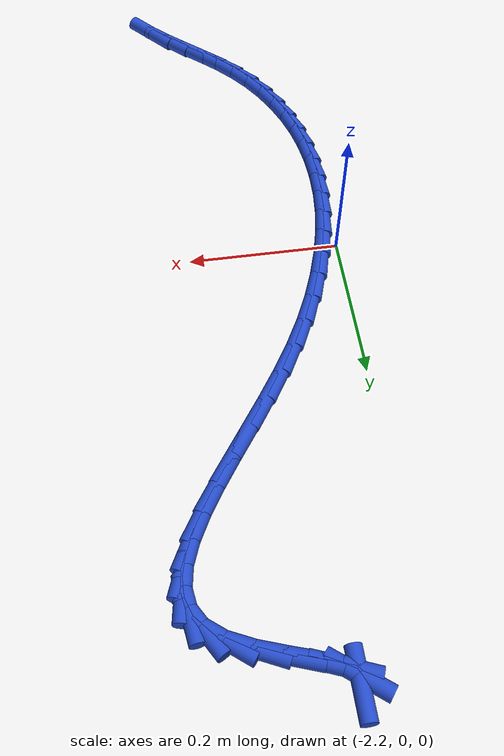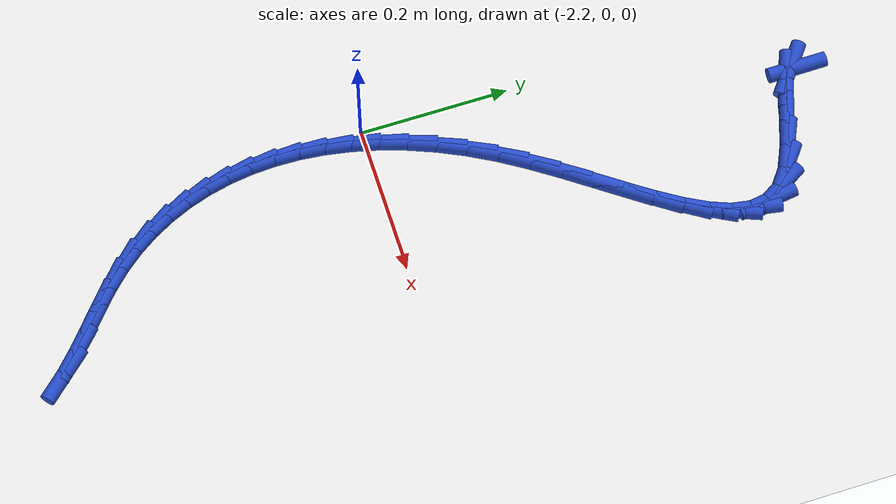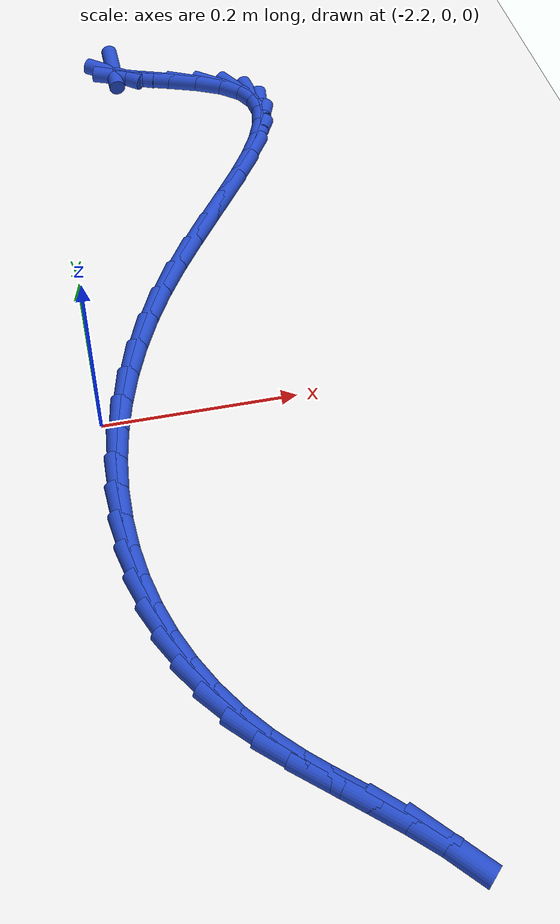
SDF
<sdf version="1.6">
 <world name="default">
  <model name="ground_plane">
   <static>1</static>
   <link name="link">
    <collision name="collision">
     <geometry><plane><normal>0 0 1</normal><size>100 100</size></plane></geometry>
     <surface><friction><ode><mu>100</mu><mu2>50</mu2></ode></friction></surface>
    </collision>
    <visual name="visual">
     <cast_shadows>0</cast_shadows>
     <geometry><plane><normal>0 0 1</normal><size>100 100</size></plane></geometry>
     <material>
      <script><uri>file://media/materials/scripts/gazebo.material</uri><name>Gazebo/WhiteGlow</name></script>
     </material>
    </visual>
   </link>
  </model>
  <model name="line">
   <link name="link_104">
    <pose>-2.112296795056608 0.5718959466598861 0.01 0 1.57 -1.5630909837554887</pose>
    <collision name="collision">
     <geometry><cylinder><radius>0.01</radius><length>0.08</length></cylinder></geometry>
    </collision>
    <visual name="visual">
     <material>
      <script><name>Gazebo/Blue</name><uri>file://media/materials/scripts/gazebo.material</uri></script>
     </material>
     <geometry><cylinder><radius>0.01</radius><length>0.08</length></cylinder></geometry>
    </visual>
   </link>
   <link name="link_105">
    <pose>-2.1122215041426853 0.5621248795618471 0.01 0 1.57 -0.6560799740158152</pose>
    <collision name="collision">
     <geometry><cylinder><radius>0.01</radius><length>0.08</length></cylinder></geometry>
    </collision>
    <visual name="visual">
     <material>
      <script><name>Gazebo/Blue</name><uri>file://media/materials/scripts/gazebo.material</uri></script>
     </material>
     <geometry><cylinder><radius>0.01</radius><length>0.08</length></cylinder></geometry>
    </visual>
   </link>
   <link name="link_106">
    <pose>-2.1000133566324757 0.5527265260437201 0.01 0 1.57 -0.36834872525323975</pose>
    <collision name="collision">
     <geometry><cylinder><radius>0.01</radius><length>0.08</length></cylinder></geometry>
    </collision>
    <visual name="visual">
     <material>
      <script><name>Gazebo/Blue</name><uri>file://media/materials/scripts/gazebo.material</uri></script>
     </material>
     <geometry><cylinder><radius>0.01</radius><length>0.08</length></cylinder></geometry>
    </visual>
   </link>
   <link name="link_107">
    <pose>-2.0756708130063855 0.5433311638146319 0.01 0 1.57 -0.3075145729033854</pose>
    <collision name="collision">
     <geometry><cylinder><radius>0.01</radius><length>0.08</length></cylinder></geometry>
    </collision>
    <visual name="visual">
     <material>
      <script><name>Gazebo/Blue</name><uri>file://media/materials/scripts/gazebo.material</uri></script>
     </material>
     <geometry><cylinder><radius>0.01</radius><length>0.08</length></cylinder></geometry>
    </visual>
   </link>
   <link name="link_108">
    <pose>-2.043821621958553 0.533216203961517 0.01 0 1.57 -0.3304514534424468</pose>
    <collision name="collision">
     <geometry><cylinder><radius>0.01</radius><length>0.08</length></cylinder></geometry>
    </collision>
    <visual name="visual">
     <material>
      <script><name>Gazebo/Blue</name><uri>file://media/materials/scripts/gazebo.material</uri></script>
     </material>
     <geometry><cylinder><radius>0.01</radius><length>0.08</length></cylinder></geometry>
    </visual>
   </link>
   <link name="link_109">
    <pose>-2.0099417245532933 0.5215944042676455 0.01 0 1.57 -0.42885665210181056</pose>
    <collision name="collision">
     <geometry><cylinder><radius>0.01</radius><length>0.08</length></cylinder></geometry>
    </collision>
    <visual name="visual">
     <material>
      <script><name>Gazebo/Blue</name><uri>file://media/materials/scripts/gazebo.material</uri></script>
     </material>
     <geometry><cylinder><radius>0.01</radius><length>0.08</length></cylinder></geometry>
    </visual>
   </link>
   <link name="link_110">
    <pose>-1.97950706185492 0.507678522516287 0.01 0 1.57 -0.6596947282418382</pose>
    <collision name="collision">
     <geometry><cylinder><radius>0.01</radius><length>0.08</length></cylinder></geometry>
    </collision>
    <visual name="visual">
     <material>
      <script><name>Gazebo/Blue</name><uri>file://media/materials/scripts/gazebo.material</uri></script>
     </material>
     <geometry><cylinder><radius>0.01</radius><length>0.08</length></cylinder></geometry>
    </visual>
   </link>
   <link name="link_111">
    <pose>-1.957661583599907 0.4907348226777319 0.01 0 1.57 -1.034462628271105</pose>
    <collision name="collision">
     <geometry><cylinder><radius>0.01</radius><length>0.08</length></cylinder></geometry>
    </collision>
    <visual name="visual">
     <material>
      <script><name>Gazebo/Blue</name><uri>file://media/materials/scripts/gazebo.material</uri></script>
     </material>
     <geometry><cylinder><radius>0.01</radius><length>0.08</length></cylinder></geometry>
    </visual>
   </link>
   <link name="link_112">
    <pose>-1.9457200652068602 0.47064670688222593 0.01 0 1.57 -1.433175584633761</pose>
    <collision name="collision">
     <geometry><cylinder><radius>0.01</radius><length>0.08</length></cylinder></geometry>
    </collision>
    <visual name="visual">
     <material>
      <script><name>Gazebo/Blue</name><uri>file://media/materials/scripts/gazebo.material</uri></script>
     </material>
     <geometry><cylinder><radius>0.01</radius><length>0.08</length></cylinder></geometry>
    </visual>
   </link>
   <link name="link_113">
    <pose>-1.9425411236651127 0.44769342998641887 0.01 0 1.57 1.4000700396749268</pose>
    <collision name="collision">
     <geometry><cylinder><radius>0.01</radius><length>0.08</length></cylinder></geometry>
    </collision>
    <visual name="visual">
     <material>
      <script><name>Gazebo/Blue</name><uri>file://media/materials/scripts/gazebo.material</uri></script>
     </material>
     <geometry><cylinder><radius>0.01</radius><length>0.08</length></cylinder></geometry>
    </visual>
   </link>
   <link name="link_114">
    <pose>-1.946943076650314 0.4221607417835254 0.01 0 1.57 1.2005355421511115</pose>
    <collision name="collision">
     <geometry><cylinder><radius>0.01</radius><length>0.08</length></cylinder></geometry>
    </collision>
    <visual name="visual">
     <material>
      <script><name>Gazebo/Blue</name><uri>file://media/materials/scripts/gazebo.material</uri></script>
     </material>
     <geometry><cylinder><radius>0.01</radius><length>0.08</length></cylinder></geometry>
    </visual>
   </link>
   <link name="link_115">
    <pose>-1.957744241838115 0.3943343920667597 0.01 0 1.57 1.0780486023793205</pose>
    <collision name="collision">
     <geometry><cylinder><radius>0.01</radius><length>0.08</length></cylinder></geometry>
    </collision>
    <visual name="visual">
     <material>
      <script><name>Gazebo/Blue</name><uri>file://media/materials/scripts/gazebo.material</uri></script>
     </material>
     <geometry><cylinder><radius>0.01</radius><length>0.08</length></cylinder></geometry>
    </visual>
   </link>
   <link name="link_116">
    <pose>-1.9737629369041678 0.36450013062933745 0.01 0 1.57 1.0046722235540284</pose>
    <collision name="collision">
     <geometry><cylinder><radius>0.01</radius><length>0.08</length></cylinder></geometry>
    </collision>
    <visual name="visual">
     <material>
      <script><name>Gazebo/Blue</name><uri>file://media/materials/scripts/gazebo.material</uri></script>
     </material>
     <geometry><cylinder><radius>0.01</radius><length>0.08</length></cylinder></geometry>
    </visual>
   </link>
   <link name="link_117">
    <pose>-1.9938174795241215 0.33294370726447303 0.01 0 1.57 0.9638696723191071</pose>
    <collision name="collision">
     <geometry><cylinder><radius>0.01</radius><length>0.08</length></cylinder></geometry>
    </collision>
    <visual name="visual">
     <material>
      <script><name>Gazebo/Blue</name><uri>file://media/materials/scripts/gazebo.material</uri></script>
     </material>
     <geometry><cylinder><radius>0.01</radius><length>0.08</length></cylinder></geometry>
    </visual>
   </link>
   <link name="link_118">
    <pose>-2.0167261873736284 0.2999508717653811 0.01 0 1.57 0.9468143156761356</pose>
    <collision name="collision">
     <geometry><cylinder><radius>0.01</radius><length>0.08</length></cylinder></geometry>
    </collision>
    <visual name="visual">
     <material>
      <script><name>Gazebo/Blue</name><uri>file://media/materials/scripts/gazebo.material</uri></script>
     </material>
     <geometry><cylinder><radius>0.01</radius><length>0.08</length></cylinder></geometry>
    </visual>
   </link>
   <link name="link_119">
    <pose>-2.04130737812834 0.2658073739252761 0.01 0 1.57 0.9492999086007174</pose>
    <collision name="collision">
     <geometry><cylinder><radius>0.01</radius><length>0.08</length></cylinder></geometry>
    </collision>
    <visual name="visual">
     <material>
      <script><name>Gazebo/Blue</name><uri>file://media/materials/scripts/gazebo.material</uri></script>
     </material>
     <geometry><cylinder><radius>0.01</radius><length>0.08</length></cylinder></geometry>
    </visual>
   </link>
   <link name="link_120">
    <pose>-2.066379369463906 0.23079896353737364 0.01 0 1.57 0.9701393062138483</pose>
    <collision name="collision">
     <geometry><cylinder><radius>0.01</radius><length>0.08</length></cylinder></geometry>
    </collision>
    <visual name="visual">
     <material>
      <script><name>Gazebo/Blue</name><uri>file://media/materials/scripts/gazebo.material</uri></script>
     </material>
     <geometry><cylinder><radius>0.01</radius><length>0.08</length></cylinder></geometry>
    </visual>
   </link>
   <link name="link_121">
    <pose>-2.090760479055977 0.19521139039488805 0.01 0 1.57 1.0105134233489974</pose>
    <collision name="collision">
     <geometry><cylinder><radius>0.01</radius><length>0.08</length></cylinder></geometry>
    </collision>
    <visual name="visual">
     <material>
      <script><name>Gazebo/Blue</name><uri>file://media/materials/scripts/gazebo.material</uri></script>
     </material>
     <geometry><cylinder><radius>0.01</radius><length>0.08</length></cylinder></geometry>
    </visual>
   </link>
   <link name="link_122">
    <pose>-2.1132703101501593 0.15933021265344938 0.01 0 1.57 1.0674731562539341</pose>
    <collision name="collision">
     <geometry><cylinder><radius>0.01</radius><length>0.08</length></cylinder></geometry>
    </collision>
    <visual name="visual">
     <material>
      <script><name>Gazebo/Blue</name><uri>file://media/materials/scripts/gazebo.material</uri></script>
     </material>
     <geometry><cylinder><radius>0.01</radius><length>0.08</length></cylinder></geometry>
    </visual>
   </link>
   <link name="link_123">
    <pose>-2.1330589519581706 0.12339172352422847 0.01 0 1.57 1.12858899087336</pose>
    <collision name="collision">
     <geometry><cylinder><radius>0.01</radius><length>0.08</length></cylinder></geometry>
    </collision>
    <visual name="visual">
     <material>
      <script><name>Gazebo/Blue</name><uri>file://media/materials/scripts/gazebo.material</uri></script>
     </material>
     <geometry><cylinder><radius>0.01</radius><length>0.08</length></cylinder></geometry>
    </visual>
   </link>
   <link name="link_124">
    <pose>-2.150044571206613 0.08751772029424107 0.01 0 1.57 1.192028520779504</pose>
    <collision name="collision">
     <geometry><cylinder><radius>0.01</radius><length>0.08</length></cylinder></geometry>
    </collision>
    <visual name="visual">
     <material>
      <script><name>Gazebo/Blue</name><uri>file://media/materials/scripts/gazebo.material</uri></script>
     </material>
     <geometry><cylinder><radius>0.01</radius><length>0.08</length></cylinder></geometry>
    </visual>
   </link>
   <link name="link_125">
    <pose>-2.1642541945447076 0.05181377269898152 0.01 0 1.57 1.2579321534321684</pose>
    <collision name="collision">
     <geometry><cylinder><radius>0.01</radius><length>0.08</length></cylinder></geometry>
    </collision>
    <visual name="visual">
     <material>
      <script><name>Gazebo/Blue</name><uri>file://media/materials/scripts/gazebo.material</uri></script>
     </material>
     <geometry><cylinder><radius>0.01</radius><length>0.08</length></cylinder></geometry>
    </visual>
   </link>
   <link name="link_126">
    <pose>-2.1757148486216766 0.016385450473947332 0.01 0 1.57 1.3264373035651136</pose>
    <collision name="collision">
     <geometry><cylinder><radius>0.01</radius><length>0.08</length></cylinder></geometry>
    </collision>
    <visual name="visual">
     <material>
      <script><name>Gazebo/Blue</name><uri>file://media/materials/scripts/gazebo.material</uri></script>
     </material>
     <geometry><cylinder><radius>0.01</radius><length>0.08</length></cylinder></geometry>
    </visual>
   </link>
   <link name="link_127">
    <pose>-2.184453560086743 -0.018661676645367088 0.01 0 1.57 1.397670484394609</pose>
    <collision name="collision">
     <geometry><cylinder><radius>0.01</radius><length>0.08</length></cylinder></geometry>
    </collision>
    <visual name="visual">
     <material>
      <script><name>Gazebo/Blue</name><uri>file://media/materials/scripts/gazebo.material</uri></script>
     </material>
     <geometry><cylinder><radius>0.01</radius><length>0.08</length></cylinder></geometry>
    </visual>
   </link>
   <link name="link_128">
    <pose>-2.190497355589129 -0.053222038923466164 0.01 0 1.57 1.4717368042261252</pose>
    <collision name="collision">
     <geometry><cylinder><radius>0.01</radius><length>0.08</length></cylinder></geometry>
    </collision>
    <visual name="visual">
     <material>
      <script><name>Gazebo/Blue</name><uri>file://media/materials/scripts/gazebo.material</uri></script>
     </material>
     <geometry><cylinder><radius>0.01</radius><length>0.08</length></cylinder></geometry>
    </visual>
   </link>
   <link name="link_129">
    <pose>-2.1938732617780583 -0.08719006662485453 0.01 0 1.57 1.548706719335636</pose>
    <collision name="collision">
     <geometry><cylinder><radius>0.01</radius><length>0.08</length></cylinder></geometry>
    </collision>
    <visual name="visual">
     <material>
      <script><name>Gazebo/Blue</name><uri>file://media/materials/scripts/gazebo.material</uri></script>
     </material>
     <geometry><cylinder><radius>0.01</radius><length>0.08</length></cylinder></geometry>
    </visual>
   </link>
   <link name="link_130">
    <pose>-2.1946083053027508 -0.12046019001403668 0.01 0 1.57 -1.5129924101545216</pose>
    <collision name="collision">
     <geometry><cylinder><radius>0.01</radius><length>0.08</length></cylinder></geometry>
    </collision>
    <visual name="visual">
     <material>
      <script><name>Gazebo/Blue</name><uri>file://media/materials/scripts/gazebo.material</uri></script>
     </material>
     <geometry><cylinder><radius>0.01</radius><length>0.08</length></cylinder></geometry>
    </visual>
   </link>
   <link name="link_131">
    <pose>-2.1927295128124307 -0.15292683935551712 0.01 0 1.57 -1.4302232901434058</pose>
    <collision name="collision">
     <geometry><cylinder><radius>0.01</radius><length>0.08</length></cylinder></geometry>
    </collision>
    <visual name="visual">
     <material>
      <script><name>Gazebo/Blue</name><uri>file://media/materials/scripts/gazebo.material</uri></script>
     </material>
     <geometry><cylinder><radius>0.01</radius><length>0.08</length></cylinder></geometry>
    </visual>
   </link>
   <link name="link_132">
    <pose>-2.18826391095632 -0.18448444491380123 0.01 0 1.57 -1.3447125028051736</pose>
    <collision name="collision">
     <geometry><cylinder><radius>0.01</radius><length>0.08</length></cylinder></geometry>
    </collision>
    <visual name="visual">
     <material>
      <script><name>Gazebo/Blue</name><uri>file://media/materials/scripts/gazebo.material</uri></script>
     </material>
     <geometry><cylinder><radius>0.01</radius><length>0.08</length></cylinder></geometry>
    </visual>
   </link>
   <link name="link_133">
    <pose>-2.1812385263836402 -0.21502743695339185 0.01 0 1.57 -1.2566957624687431</pose>
    <collision name="collision">
     <geometry><cylinder><radius>0.01</radius><length>0.08</length></cylinder></geometry>
    </collision>
    <visual name="visual">
     <material>
      <script><name>Gazebo/Blue</name><uri>file://media/materials/scripts/gazebo.material</uri></script>
     </material>
     <geometry><cylinder><radius>0.01</radius><length>0.08</length></cylinder></geometry>
    </visual>
   </link>
   <link name="link_134">
    <pose>-2.171680385743615 -0.2444502457387943 0.01 0 1.57 -1.1665213849013856</pose>
    <collision name="collision">
     <geometry><cylinder><radius>0.01</radius><length>0.08</length></cylinder></geometry>
    </collision>
    <visual name="visual">
     <material>
      <script><name>Gazebo/Blue</name><uri>file://media/materials/scripts/gazebo.material</uri></script>
     </material>
     <geometry><cylinder><radius>0.01</radius><length>0.08</length></cylinder></geometry>
    </visual>
   </link>
   <link name="link_135">
    <pose>-2.1596165156854665 -0.2726473015345132 0.01 0 1.57 -1.0746527451292593</pose>
    <collision name="collision">
     <geometry><cylinder><radius>0.01</radius><length>0.08</length></cylinder></geometry>
    </collision>
    <visual name="visual">
     <material>
      <script><name>Gazebo/Blue</name><uri>file://media/materials/scripts/gazebo.material</uri></script>
     </material>
     <geometry><cylinder><radius>0.01</radius><length>0.08</length></cylinder></geometry>
    </visual>
   </link>
   <link name="link_136">
    <pose>-2.1450739428584176 -0.2995130346050532 0.01 0 1.57 -0.9816595990626643</pose>
    <collision name="collision">
     <geometry><cylinder><radius>0.01</radius><length>0.08</length></cylinder></geometry>
    </collision>
    <visual name="visual">
     <material>
      <script><name>Gazebo/Blue</name><uri>file://media/materials/scripts/gazebo.material</uri></script>
     </material>
     <geometry><cylinder><radius>0.01</radius><length>0.08</length></cylinder></geometry>
    </visual>
   </link>
   <link name="link_137">
    <pose>-2.1280796939116895 -0.32494187521491846 0.01 0 1.57 -0.8881969993867468</pose>
    <collision name="collision">
     <geometry><cylinder><radius>0.01</radius><length>0.08</length></cylinder></geometry>
    </collision>
    <visual name="visual">
     <material>
      <script><name>Gazebo/Blue</name><uri>file://media/materials/scripts/gazebo.material</uri></script>
     </material>
     <geometry><cylinder><radius>0.01</radius><length>0.08</length></cylinder></geometry>
    </visual>
   </link>
   <link name="link_138">
    <pose>-2.1086607954945054 -0.3488282536286139 0.01 0 1.57 -0.797600787608534</pose>
    <collision name="collision">
     <geometry><cylinder><radius>0.01</radius><length>0.08</length></cylinder></geometry>
    </collision>
    <visual name="visual">
     <material>
      <script><name>Gazebo/Blue</name><uri>file://media/materials/scripts/gazebo.material</uri></script>
     </material>
     <geometry><cylinder><radius>0.01</radius><length>0.08</length></cylinder></geometry>
    </visual>
   </link>
   <link name="link_139">
    <pose>-2.0869041915720206 -0.37112241921964717 0.01 0 1.57 -0.733098424919451</pose>
    <collision name="collision">
     <geometry><cylinder><radius>0.01</radius><length>0.08</length></cylinder></geometry>
    </collision>
    <visual name="visual">
     <material>
      <script><name>Gazebo/Blue</name><uri>file://media/materials/scripts/gazebo.material</uri></script>
     </material>
     <geometry><cylinder><radius>0.01</radius><length>0.08</length></cylinder></geometry>
    </visual>
   </link>
   <link name="link_140">
    <pose>-2.063424490105472 -0.39226619435099436 0.01 0 1.57 -0.705066423617531</pose>
    <collision name="collision">
     <geometry><cylinder><radius>0.01</radius><length>0.08</length></cylinder></geometry>
    </collision>
    <visual name="visual">
     <material>
      <script><name>Gazebo/Blue</name><uri>file://media/materials/scripts/gazebo.material</uri></script>
     </material>
     <geometry><cylinder><radius>0.01</radius><length>0.08</length></cylinder></geometry>
    </visual>
   </link>
   <link name="link_141">
    <pose>-2.0391106239168475 -0.41295696305534013 0.01 0 1.57 -0.7120817382999806</pose>
    <collision name="collision">
     <geometry><cylinder><radius>0.01</radius><length>0.08</length></cylinder></geometry>
    </collision>
    <visual name="visual">
     <material>
      <script><name>Gazebo/Blue</name><uri>file://media/materials/scripts/gazebo.material</uri></script>
     </material>
     <geometry><cylinder><radius>0.01</radius><length>0.08</length></cylinder></geometry>
    </visual>
   </link>
   <link name="link_142">
    <pose>-2.0148538727707948 -0.43389429578253824 0.01 0 1.57 -0.7538788058091499</pose>
    <collision name="collision">
     <geometry><cylinder><radius>0.01</radius><length>0.08</length></cylinder></geometry>
    </collision>
    <visual name="visual">
     <material>
      <script><name>Gazebo/Blue</name><uri>file://media/materials/scripts/gazebo.material</uri></script>
     </material>
     <geometry><cylinder><radius>0.01</radius><length>0.08</length></cylinder></geometry>
    </visual>
   </link>
   <link name="link_143">
    <pose>-1.99154551643196 -0.4557777629824418 0.01 0 1.57 -0.8311570571973684</pose>
    <collision name="collision">
     <geometry><cylinder><radius>0.01</radius><length>0.08</length></cylinder></geometry>
    </collision>
    <visual name="visual">
     <material>
      <script><name>Gazebo/Blue</name><uri>file://media/materials/scripts/gazebo.material</uri></script>
     </material>
     <geometry><cylinder><radius>0.01</radius><length>0.08</length></cylinder></geometry>
    </visual>
   </link>
  </model>
 </world>
</sdf>
